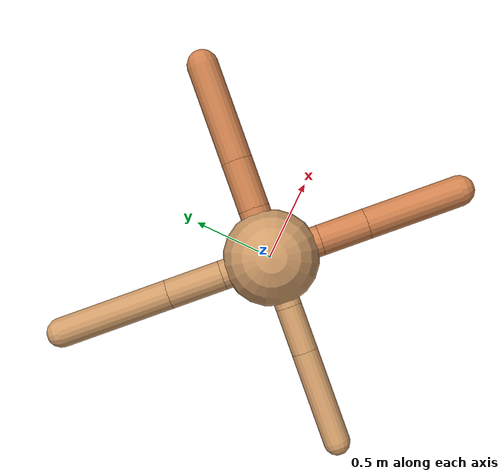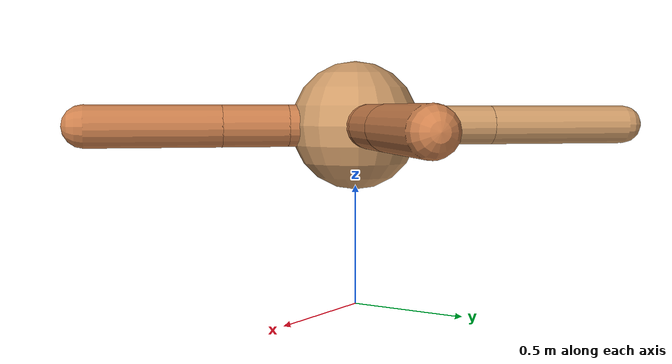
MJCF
<?xml version="1.0" ?>
<mujoco model="ant">

	<compiler angle="degree" coordinate="local" inertiafromgeom="true"/>

	<option integrator="RK4" timestep="0.01"/>

	<custom>

		<numeric data="0.0 0.0 0.55 1.0 0.0 0.0 0.0 0.0 1.0 0.0 -1.0 0.0 -1.0 0.0 1.0" name="init_qpos"/>

	</custom>

	<default>

		<joint armature="1" damping="1" limited="true"/>

		<geom conaffinity="0" condim="3" density="5.0" friction="1.5 0.1 0.1" margin="0.01" rgba="0.8 0.6 0.4 1"/>

	</default>

	<worldbody>

		<body name="torso" pos="0 0 0.75">

			<geom name="torso_geom" pos="0 0 0" size="0.2656391310080015" type="sphere"/>

			<!--joint armature="0" damping="0" limited="false" margin="0.01" name="root" pos="0 0 0" type="free"/-->

			<body name="front_left_leg" pos="0 0 0">

				<geom fromto="0 0 0 0.2 0.2 0" name="aux_1_geom" size="0.0878400561966456" type="capsule" rgba=".8 .5 .3 1"/>

				<body name="aux_1" pos="0.2 0.2 0">

					<joint axis="0 0 1" name="hip_1" pos="0.0 0.0 0.0" range="-40 40" type="hinge"/>

					<geom fromto="0 0 0 0.19595049064488657 0.19595049064488657 0" name="left_leg_geom" size="0.0878400561966456" type="capsule" rgba=".8 .5 .3 1"/>

					<body pos="0.19595049064488657 0.19595049064488657 0" name="front_left_foot">

						<joint axis="-1 1 0" name="ankle_1" pos="0.0 0.0 0.0" range="30 100" type="hinge"/>

						<geom fromto="0 0 0 0.39190098128977313 0.39190098128977313 0" name="left_ankle_geom" size="0.0878400561966456" type="capsule" rgba=".8 .5 .3 1"/>

					</body>

				</body>

			</body>

			<body name="front_right_leg" pos="0 0 0">

				<geom fromto="0 0 0 -0.2 0.2 0" name="aux_2_geom" size="0.08298565895875105" type="capsule"/>

				<body name="aux_2" pos="-0.2 0.2 0">

					<joint axis="0 0 1" name="hip_2" pos="0.0 0.0 0.0" range="-40 40" type="hinge"/>

					<geom fromto="0 0 0 -0.21875705056827283 0.21875705056827283 0" name="right_leg_geom" size="0.08298565895875105" type="capsule"/>

					<body pos="-0.21875705056827283 0.21875705056827283 0" name="front_right_foot">

						<joint axis="1 1 0" name="ankle_2" pos="0.0 0.0 0.0" range="-100 -30" type="hinge"/>

						<geom fromto="0 0 0 -0.43751410113654565 0.43751410113654565 0" name="right_ankle_geom" size="0.08298565895875105" type="capsule"/>

					</body>

				</body>

			</body>

			<body name="left_back_leg" pos="0 0 0">

				<geom fromto="0 0 0 -0.2 -0.2 0" name="aux_3_geom" size="0.07375335995222317" type="capsule"/>

				<body name="aux_3" pos="-0.2 -0.2 0">

					<joint axis="0 0 1" name="hip_3" pos="0.0 0.0 0.0" range="-40 40" type="hinge"/>

					<geom fromto="0 0 0 -0.1842123086910756 -0.1842123086910756 0" name="back_leg_geom" size="0.07375335995222317" type="capsule"/>

					<body pos="-0.1842123086910756 -0.1842123086910756 0" name="left_back_foot">

						<joint axis="-1 1 0" name="ankle_3" pos="0.0 0.0 0.0" range="-100 -30" type="hinge"/>

						<geom fromto="0 0 0 -0.3684246173821512 -0.3684246173821512 0" name="third_ankle_geom" size="0.07375335995222317" type="capsule"/>

					</body>

				</body>

			</body>

			<body name="right_back_leg" pos="0 0 0">

				<geom fromto="0 0 0 0.2 -0.2 0" name="aux_4_geom" size="0.08659652213307918" type="capsule" rgba=".8 .5 .3 1"/>

				<body name="aux_4" pos="0.2 -0.2 0">

					<joint axis="0 0 1" name="hip_4" pos="0.0 0.0 0.0" range="-40 40" type="hinge"/>

					<geom fromto="0 0 0 0.18908645058611506 -0.18908645058611506 0" name="rightback_leg_geom" size="0.08659652213307918" type="capsule" rgba=".8 .5 .3 1"/>

					<body pos="0.18908645058611506 -0.18908645058611506 0" name="right_back_foot">

						<joint axis="1 1 0" name="ankle_4" pos="0.0 0.0 0.0" range="30 100" type="hinge"/>

						<geom fromto="0 0 0 0.3781729011722301 -0.3781729011722301 0" name="fourth_ankle_geom" size="0.08659652213307918" type="capsule" rgba=".8 .5 .3 1"/>

					</body>

				</body>

			</body>

		</body>

	</worldbody>

	<actuator>

		<motor ctrllimited="true" ctrlrange="-1.0 1.0" joint="hip_4" gear="150"/>

		<motor ctrllimited="true" ctrlrange="-1.0 1.0" joint="ankle_4" gear="150"/>

		<motor ctrllimited="true" ctrlrange="-1.0 1.0" joint="hip_1" gear="150"/>

		<motor ctrllimited="true" ctrlrange="-1.0 1.0" joint="ankle_1" gear="150"/>

		<motor ctrllimited="true" ctrlrange="-1.0 1.0" joint="hip_2" gear="150"/>

		<motor ctrllimited="true" ctrlrange="-1.0 1.0" joint="ankle_2" gear="150"/>

		<motor ctrllimited="true" ctrlrange="-1.0 1.0" joint="hip_3" gear="150"/>

		<motor ctrllimited="true" ctrlrange="-1.0 1.0" joint="ankle_3" gear="150"/>

	</actuator>

</mujoco>
